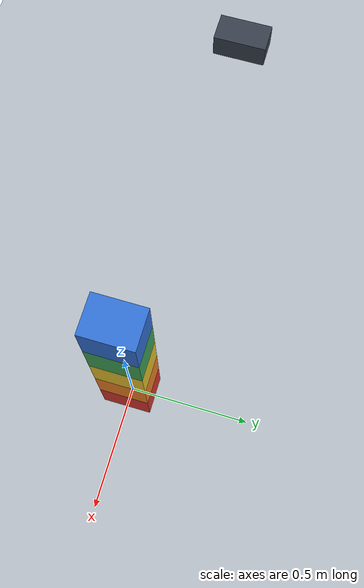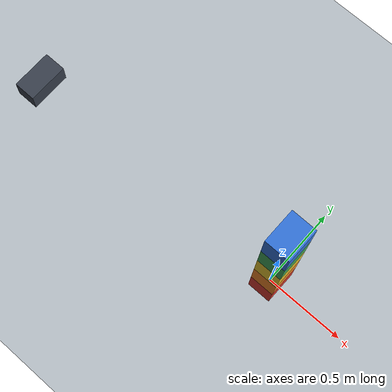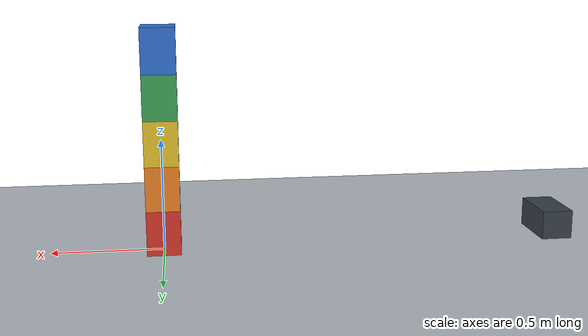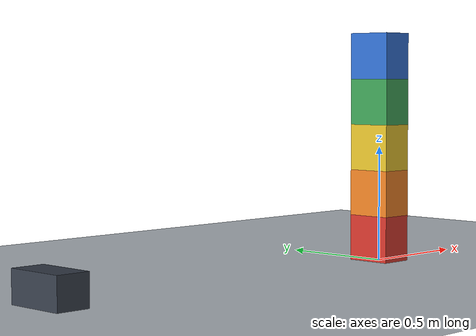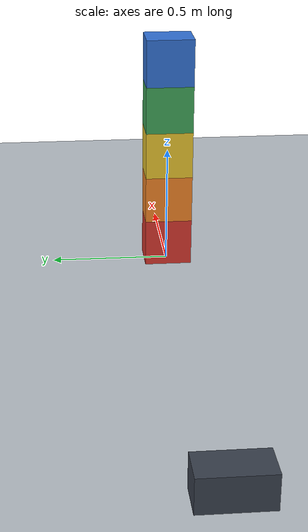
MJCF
<mujoco model="five_block_topple">
  <compiler angle="radian"/>
  <option timestep="0.002" gravity="0 0 -9.81" integrator="implicitfast" solver="Newton" iterations="100" cone="elliptic"/>

  <visual>
    <headlight ambient="0.35 0.35 0.35" diffuse="0.7 0.7 0.7" specular="0.2 0.2 0.2"/>
  </visual>

  <worldbody>
    <light name="overhead" pos="-2 -3 4" dir="1 1 -2"/>
    <camera name="overview" pos="2 -3 1.8" xyaxes="0.83205 0.55470 0 -0.19591 0.29387 0.93556"/>
    <geom name="floor" type="plane" size="5 5 0.1" friction="0.9 0.005 0.0001" rgba="0.72 0.75 0.78 1"/>

    <!-- The powered striker reaches the bottom block after approximately 0.83 seconds. -->
    <body name="pusher" pos="-1.8 0 0.075">
      <joint name="pusher_slide" type="slide" axis="1 0 0" limited="true" range="-0.01 2.7" damping="0" frictionloss="0"/>
      <geom name="pusher_geom" type="box" size="0.07 0.13 0.065" mass="4" friction="0.5 0.005 0.0001" solref="0.008 1" solimp="0.95 0.99 0.001" rgba="0.22 0.25 0.30 1"/>
    </body>

    <body name="block1" pos="0 0 0.1">
      <freejoint name="block1_free"/>
      <geom name="block1_geom" type="box" size="0.075 0.1 0.1" mass="0.4" friction="0.8 0.005 0.0001" solref="0.008 1" solimp="0.95 0.99 0.001" rgba="0.85 0.22 0.18 1"/>
    </body>

    <body name="block2" pos="0 0 0.3">
      <freejoint name="block2_free"/>
      <geom name="block2_geom" type="box" size="0.075 0.1 0.1" mass="0.4" friction="0.8 0.005 0.0001" solref="0.008 1" solimp="0.95 0.99 0.001" rgba="0.95 0.52 0.15 1"/>
    </body>

    <body name="block3" pos="0 0 0.5">
      <freejoint name="block3_free"/>
      <geom name="block3_geom" type="box" size="0.075 0.1 0.1" mass="0.4" friction="0.8 0.005 0.0001" solref="0.008 1" solimp="0.95 0.99 0.001" rgba="0.92 0.78 0.18 1"/>
    </body>

    <body name="block4" pos="0 0 0.7">
      <freejoint name="block4_free"/>
      <geom name="block4_geom" type="box" size="0.075 0.1 0.1" mass="0.4" friction="0.8 0.005 0.0001" solref="0.008 1" solimp="0.95 0.99 0.001" rgba="0.25 0.65 0.35 1"/>
    </body>

    <body name="block5" pos="0 0 0.9">
      <freejoint name="block5_free"/>
      <geom name="block5_geom" type="box" size="0.075 0.1 0.1" mass="0.4" friction="0.8 0.005 0.0001" solref="0.008 1" solimp="0.95 0.99 0.001" rgba="0.20 0.45 0.85 1"/>
    </body>
  </worldbody>

  <actuator>
    <velocity name="pusher_drive" joint="pusher_slide" kv="200" ctrllimited="true" ctrlrange="0 2.5" forcelimited="true" forcerange="-150 150"/>
  </actuator>

  <keyframe>
    <key name="start" qpos="0 0 0 0.1 1 0 0 0 0 0 0.3 1 0 0 0 0 0 0.5 1 0 0 0 0 0 0.7 1 0 0 0 0 0 0.9 1 0 0 0" qvel="2 0 0 0 0 0 0 0 0 0 0 0 0 0 0 0 0 0 0 0 0 0 0 0 0 0 0 0 0 0 0" ctrl="2"/>
  </keyframe>
</mujoco>
